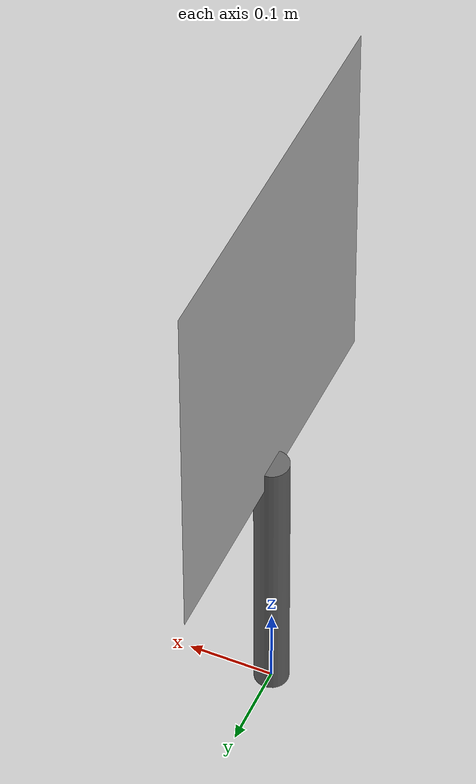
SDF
<?xml version="1.0"?>
<sdf version="1.7">
  <model name="sign_winding">
    <static>true</static>
    <link name="link">

      <!-- Support post -->
      <visual name="post">
        <pose>0 0 0.175 0 0 0</pose>
        <geometry>
          <cylinder>
            <radius>0.02</radius>
            <length>0.35</length>
          </cylinder>
        </geometry>
        <material>
          <ambient>0.3 0.3 0.3 1</ambient>
          <diffuse>0.4 0.4 0.4 1</diffuse>
        </material>
      </visual>

      <visual name="board_face">
        <pose>0 0 0.55 0 0 0</pose>
        <geometry>
          <mesh>
            <uri>model://sign_winding/meshes/sign.obj</uri>
          </mesh>
        </geometry>
      </visual>

      <collision name="board_col">
        <pose>0 0 0.55 0 0 0</pose>
        <geometry>
          <box>
            <size>0.02 0.45 0.45</size>
          </box>
        </geometry>
      </collision>

    </link>
  </model>
</sdf>
